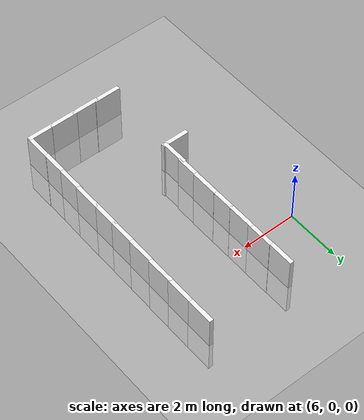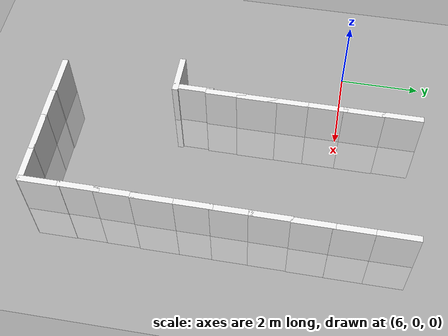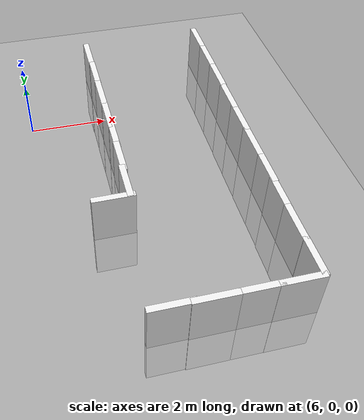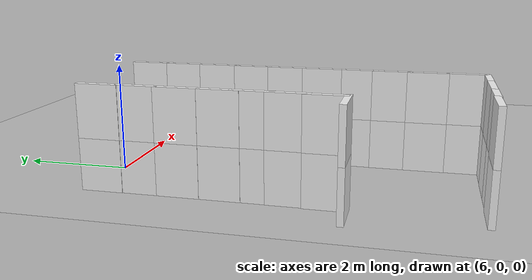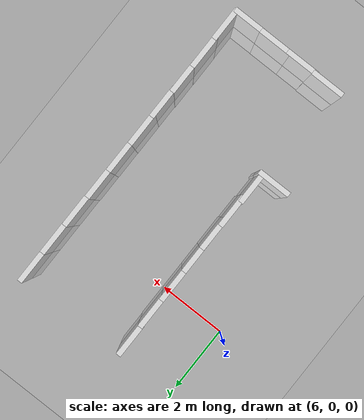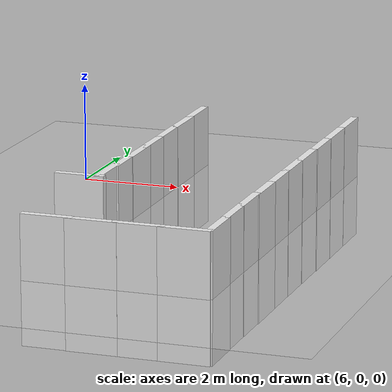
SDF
<sdf version="1.6">
 <world name="default">
  <model name="ground_plane">
   <static>1</static>
   <link name="link">
    <collision name="collision">
     <geometry><plane><normal>0 0 1</normal><size>100 100</size></plane></geometry>
     <surface><friction><ode><mu>100</mu><mu2>50</mu2></ode></friction></surface>
    </collision>
    <visual name="visual">
     <cast_shadows>0</cast_shadows>
     <geometry><plane><normal>0 0 1</normal><size>100 100</size></plane></geometry>
     <material>
      <script><uri>file://media/materials/scripts/gazebo.material</uri><name>Gazebo/Grey</name></script>
     </material>
    </visual>
   </link>
  </model>
  <model name="wall_right_13">
   <link name="Wall_10">
    <inertial>
     <mass>1</mass>
     <inertia><ixx>1</ixx><ixy>0</ixy><ixz>0</ixz><iyy>1</iyy><iyz>0</iyz><izz>1</izz></inertia>
    </inertial>
    <visual name="Wall_10_Visual_0">
     <geometry><box><size>1 0.15 2.5</size></box></geometry>
     <material>
      <script>
       <uri>model://wall/materials/scripts</uri>
       <uri>model://wall/materials/textures</uri>
       <name>wall_white</name>
      </script>
      <shader type="pixel"><normal_map>__default__</normal_map></shader>
      <ambient>1 1 1 1</ambient>
      <diffuse>1 1 1 1</diffuse>
      <specular>0 0 0 1</specular>
      <emissive>0 0 0 1</emissive>
     </material>
     <meta><layer>0</layer></meta>
    </visual>
    <collision name="Wall_10_Collision_0">
     <geometry><box><size>1 0.15 2.5</size></box></geometry>
     <surface>
      <friction>
       <ode><mu>1</mu><mu2>1</mu2><fdir1>0 0 0</fdir1><slip1>0</slip1><slip2>0</slip2></ode>
       <torsional>
        <coefficient>1</coefficient>
        <patch_radius>0</patch_radius>
        <surface_radius>0</surface_radius>
        <use_patch_radius>1</use_patch_radius>
        <ode><slip>0</slip></ode>
       </torsional>
      </friction>
      <bounce><restitution_coefficient>0</restitution_coefficient><threshold>1e+06</threshold></bounce>
      <contact>
       <collide_without_contact>0</collide_without_contact>
       <collide_without_contact_bitmask>1</collide_without_contact_bitmask>
       <collide_bitmask>1</collide_bitmask>
       <ode>
        <soft_cfm>0</soft_cfm>
        <soft_erp>0.2</soft_erp>
        <kp>1e+13</kp>
        <kd>1</kd>
        <max_vel>0.01</max_vel>
        <min_depth>0</min_depth>
       </ode>
       <bullet>
        <split_impulse>1</split_impulse>
        <split_impulse_penetration_threshold>-0.01</split_impulse_penetration_threshold>
        <soft_cfm>0</soft_cfm>
        <soft_erp>0.2</soft_erp>
        <kp>1e+13</kp>
        <kd>1</kd>
       </bullet>
      </contact>
     </surface>
    </collision>
   </link>
   <static>1</static>
   <pose>8 -7 0 0 -0 0</pose>
  </model>
  <model name="wall_right_13_clone_1">
   <link name="Wall_10">
    <inertial>
     <mass>1</mass>
     <inertia><ixx>1</ixx><ixy>0</ixy><ixz>0</ixz><iyy>1</iyy><iyz>0</iyz><izz>1</izz></inertia>
    </inertial>
    <visual name="Wall_10_Visual_0">
     <geometry><box><size>1 0.15 2.5</size></box></geometry>
     <material>
      <script>
       <uri>model://wall/materials/scripts</uri>
       <uri>model://wall/materials/textures</uri>
       <name>wall_white</name>
      </script>
      <shader type="pixel"><normal_map>__default__</normal_map></shader>
      <ambient>1 1 1 1</ambient>
      <diffuse>1 1 1 1</diffuse>
      <specular>0 0 0 1</specular>
      <emissive>0 0 0 1</emissive>
     </material>
     <meta><layer>0</layer></meta>
    </visual>
    <collision name="Wall_10_Collision_0">
     <geometry><box><size>1 0.15 2.5</size></box></geometry>
     <surface>
      <friction>
       <ode><mu>1</mu><mu2>1</mu2><fdir1>0 0 0</fdir1><slip1>0</slip1><slip2>0</slip2></ode>
       <torsional>
        <coefficient>1</coefficient>
        <patch_radius>0</patch_radius>
        <surface_radius>0</surface_radius>
        <use_patch_radius>1</use_patch_radius>
        <ode><slip>0</slip></ode>
       </torsional>
      </friction>
      <bounce><restitution_coefficient>0</restitution_coefficient><threshold>1e+06</threshold></bounce>
      <contact>
       <collide_without_contact>0</collide_without_contact>
       <collide_without_contact_bitmask>1</collide_without_contact_bitmask>
       <collide_bitmask>1</collide_bitmask>
       <ode>
        <soft_cfm>0</soft_cfm>
        <soft_erp>0.2</soft_erp>
        <kp>1e+13</kp>
        <kd>1</kd>
        <max_vel>0.01</max_vel>
        <min_depth>0</min_depth>
       </ode>
       <bullet>
        <split_impulse>1</split_impulse>
        <split_impulse_penetration_threshold>-0.01</split_impulse_penetration_threshold>
        <soft_cfm>0</soft_cfm>
        <soft_erp>0.2</soft_erp>
        <kp>1e+13</kp>
        <kd>1</kd>
       </bullet>
      </contact>
     </surface>
    </collision>
   </link>
   <static>1</static>
   <pose>8.86266 -7.0168 0 0 -0 0</pose>
  </model>
  <model name="wall_right_13_clone_2">
   <link name="Wall_10">
    <inertial>
     <mass>1</mass>
     <inertia><ixx>1</ixx><ixy>0</ixy><ixz>0</ixz><iyy>1</iyy><iyz>0</iyz><izz>1</izz></inertia>
    </inertial>
    <visual name="Wall_10_Visual_0">
     <geometry><box><size>1 0.15 2.5</size></box></geometry>
     <material>
      <script>
       <uri>model://wall/materials/scripts</uri>
       <uri>model://wall/materials/textures</uri>
       <name>wall_white</name>
      </script>
      <shader type="pixel"><normal_map>__default__</normal_map></shader>
      <ambient>1 1 1 1</ambient>
      <diffuse>1 1 1 1</diffuse>
      <specular>0 0 0 1</specular>
      <emissive>0 0 0 1</emissive>
     </material>
     <meta><layer>0</layer></meta>
    </visual>
    <collision name="Wall_10_Collision_0">
     <geometry><box><size>1 0.15 2.5</size></box></geometry>
     <surface>
      <friction>
       <ode><mu>1</mu><mu2>1</mu2><fdir1>0 0 0</fdir1><slip1>0</slip1><slip2>0</slip2></ode>
       <torsional>
        <coefficient>1</coefficient>
        <patch_radius>0</patch_radius>
        <surface_radius>0</surface_radius>
        <use_patch_radius>1</use_patch_radius>
        <ode><slip>0</slip></ode>
       </torsional>
      </friction>
      <bounce><restitution_coefficient>0</restitution_coefficient><threshold>1e+06</threshold></bounce>
      <contact>
       <collide_without_contact>0</collide_without_contact>
       <collide_without_contact_bitmask>1</collide_without_contact_bitmask>
       <collide_bitmask>1</collide_bitmask>
       <ode>
        <soft_cfm>0</soft_cfm>
        <soft_erp>0.2</soft_erp>
        <kp>1e+13</kp>
        <kd>1</kd>
        <max_vel>0.01</max_vel>
        <min_depth>0</min_depth>
       </ode>
       <bullet>
        <split_impulse>1</split_impulse>
        <split_impulse_penetration_threshold>-0.01</split_impulse_penetration_threshold>
        <soft_cfm>0</soft_cfm>
        <soft_erp>0.2</soft_erp>
        <kp>1e+13</kp>
        <kd>1</kd>
       </bullet>
      </contact>
     </surface>
    </collision>
   </link>
   <static>1</static>
   <pose>9.75403 -7.01601 0 0 -0 0</pose>
  </model>
  <model name="wall_right_13_clone_clone">
   <link name="Wall_10">
    <inertial>
     <mass>1</mass>
     <inertia><ixx>1</ixx><ixy>0</ixy><ixz>0</ixz><iyy>1</iyy><iyz>0</iyz><izz>1</izz></inertia>
    </inertial>
    <visual name="Wall_10_Visual_0">
     <geometry><box><size>1 0.15 2.5</size></box></geometry>
     <material>
      <script>
       <uri>model://wall/materials/scripts</uri>
       <uri>model://wall/materials/textures</uri>
       <name>wall_white</name>
      </script>
      <shader type="pixel"><normal_map>__default__</normal_map></shader>
      <ambient>1 1 1 1</ambient>
      <diffuse>1 1 1 1</diffuse>
      <specular>0 0 0 1</specular>
      <emissive>0 0 0 1</emissive>
     </material>
     <meta><layer>0</layer></meta>
    </visual>
    <collision name="Wall_10_Collision_0">
     <geometry><box><size>1 0.15 2.5</size></box></geometry>
     <surface>
      <friction>
       <ode><mu>1</mu><mu2>1</mu2><fdir1>0 0 0</fdir1><slip1>0</slip1><slip2>0</slip2></ode>
       <torsional>
        <coefficient>1</coefficient>
        <patch_radius>0</patch_radius>
        <surface_radius>0</surface_radius>
        <use_patch_radius>1</use_patch_radius>
        <ode><slip>0</slip></ode>
       </torsional>
      </friction>
      <bounce><restitution_coefficient>0</restitution_coefficient><threshold>1e+06</threshold></bounce>
      <contact>
       <collide_without_contact>0</collide_without_contact>
       <collide_without_contact_bitmask>1</collide_without_contact_bitmask>
       <collide_bitmask>1</collide_bitmask>
       <ode>
        <soft_cfm>0</soft_cfm>
        <soft_erp>0.2</soft_erp>
        <kp>1e+13</kp>
        <kd>1</kd>
        <max_vel>0.01</max_vel>
        <min_depth>0</min_depth>
       </ode>
       <bullet>
        <split_impulse>1</split_impulse>
        <split_impulse_penetration_threshold>-0.01</split_impulse_penetration_threshold>
        <soft_cfm>0</soft_cfm>
        <soft_erp>0.2</soft_erp>
        <kp>1e+13</kp>
        <kd>1</kd>
       </bullet>
      </contact>
     </surface>
    </collision>
   </link>
   <static>1</static>
   <pose>7.48174 -4.07036 0 0 -0 0</pose>
  </model>
  <model name="wall_left_12_clone">
   <link name="Wall_10">
    <inertial>
     <mass>1</mass>
     <inertia><ixx>1</ixx><ixy>0</ixy><ixz>0</ixz><iyy>1</iyy><iyz>0</iyz><izz>1</izz></inertia>
    </inertial>
    <visual name="Wall_10_Visual_0">
     <geometry><box><size>1 0.15 2.5</size></box></geometry>
     <material>
      <script>
       <uri>model://wall/materials/scripts</uri>
       <uri>model://wall/materials/textures</uri>
       <name>wall_white</name>
      </script>
      <shader type="pixel"><normal_map>__default__</normal_map></shader>
      <ambient>1 1 1 1</ambient>
      <diffuse>1 1 1 1</diffuse>
      <specular>0 0 0 1</specular>
      <emissive>0 0 0 1</emissive>
     </material>
     <meta><layer>0</layer></meta>
    </visual>
    <collision name="Wall_10_Collision_0">
     <geometry><box><size>1 0.15 2.5</size></box></geometry>
     <surface>
      <friction>
       <ode><mu>1</mu><mu2>1</mu2><fdir1>0 0 0</fdir1><slip1>0</slip1><slip2>0</slip2></ode>
       <torsional>
        <coefficient>1</coefficient>
        <patch_radius>0</patch_radius>
        <surface_radius>0</surface_radius>
        <use_patch_radius>1</use_patch_radius>
        <ode><slip>0</slip></ode>
       </torsional>
      </friction>
      <bounce><restitution_coefficient>0</restitution_coefficient><threshold>1e+06</threshold></bounce>
      <contact>
       <collide_without_contact>0</collide_without_contact>
       <collide_without_contact_bitmask>1</collide_without_contact_bitmask>
       <collide_bitmask>1</collide_bitmask>
       <ode>
        <soft_cfm>0</soft_cfm>
        <soft_erp>0.2</soft_erp>
        <kp>1e+13</kp>
        <kd>1</kd>
        <max_vel>0.01</max_vel>
        <min_depth>0</min_depth>
       </ode>
       <bullet>
        <split_impulse>1</split_impulse>
        <split_impulse_penetration_threshold>-0.01</split_impulse_penetration_threshold>
        <soft_cfm>0</soft_cfm>
        <soft_erp>0.2</soft_erp>
        <kp>1e+13</kp>
        <kd>1</kd>
       </bullet>
      </contact>
     </surface>
    </collision>
   </link>
   <static>1</static>
   <pose>7.86204 -3.62401 0 0 -0 1.57</pose>
  </model>
  <model name="wall_left_12_clone_0">
   <link name="Wall_10">
    <inertial>
     <mass>1</mass>
     <inertia><ixx>1</ixx><ixy>0</ixy><ixz>0</ixz><iyy>1</iyy><iyz>0</iyz><izz>1</izz></inertia>
    </inertial>
    <visual name="Wall_10_Visual_0">
     <geometry><box><size>1 0.15 2.5</size></box></geometry>
     <material>
      <script>
       <uri>model://wall/materials/scripts</uri>
       <uri>model://wall/materials/textures</uri>
       <name>wall_white</name>
      </script>
      <shader type="pixel"><normal_map>__default__</normal_map></shader>
      <ambient>1 1 1 1</ambient>
      <diffuse>1 1 1 1</diffuse>
      <specular>0 0 0 1</specular>
      <emissive>0 0 0 1</emissive>
     </material>
     <meta><layer>0</layer></meta>
    </visual>
    <collision name="Wall_10_Collision_0">
     <geometry><box><size>1 0.15 2.5</size></box></geometry>
     <surface>
      <friction>
       <ode><mu>1</mu><mu2>1</mu2><fdir1>0 0 0</fdir1><slip1>0</slip1><slip2>0</slip2></ode>
       <torsional>
        <coefficient>1</coefficient>
        <patch_radius>0</patch_radius>
        <surface_radius>0</surface_radius>
        <use_patch_radius>1</use_patch_radius>
        <ode><slip>0</slip></ode>
       </torsional>
      </friction>
      <bounce><restitution_coefficient>0</restitution_coefficient><threshold>1e+06</threshold></bounce>
      <contact>
       <collide_without_contact>0</collide_without_contact>
       <collide_without_contact_bitmask>1</collide_without_contact_bitmask>
       <collide_bitmask>1</collide_bitmask>
       <ode>
        <soft_cfm>0</soft_cfm>
        <soft_erp>0.2</soft_erp>
        <kp>1e+13</kp>
        <kd>1</kd>
        <max_vel>0.01</max_vel>
        <min_depth>0</min_depth>
       </ode>
       <bullet>
        <split_impulse>1</split_impulse>
        <split_impulse_penetration_threshold>-0.01</split_impulse_penetration_threshold>
        <soft_cfm>0</soft_cfm>
        <soft_erp>0.2</soft_erp>
        <kp>1e+13</kp>
        <kd>1</kd>
       </bullet>
      </contact>
     </surface>
    </collision>
   </link>
   <static>1</static>
   <pose>7.89497 -2.80901 0 0 -0 1.57</pose>
  </model>
  <model name="wall_left_12_clone_1">
   <link name="Wall_10">
    <inertial>
     <mass>1</mass>
     <inertia><ixx>1</ixx><ixy>0</ixy><ixz>0</ixz><iyy>1</iyy><iyz>0</iyz><izz>1</izz></inertia>
    </inertial>
    <visual name="Wall_10_Visual_0">
     <geometry><box><size>1 0.15 2.5</size></box></geometry>
     <material>
      <script>
       <uri>model://wall/materials/scripts</uri>
       <uri>model://wall/materials/textures</uri>
       <name>wall_white</name>
      </script>
      <shader type="pixel"><normal_map>__default__</normal_map></shader>
      <ambient>1 1 1 1</ambient>
      <diffuse>1 1 1 1</diffuse>
      <specular>0 0 0 1</specular>
      <emissive>0 0 0 1</emissive>
     </material>
     <meta><layer>0</layer></meta>
    </visual>
    <collision name="Wall_10_Collision_0">
     <geometry><box><size>1 0.15 2.5</size></box></geometry>
     <surface>
      <friction>
       <ode><mu>1</mu><mu2>1</mu2><fdir1>0 0 0</fdir1><slip1>0</slip1><slip2>0</slip2></ode>
       <torsional>
        <coefficient>1</coefficient>
        <patch_radius>0</patch_radius>
        <surface_radius>0</surface_radius>
        <use_patch_radius>1</use_patch_radius>
        <ode><slip>0</slip></ode>
       </torsional>
      </friction>
      <bounce><restitution_coefficient>0</restitution_coefficient><threshold>1e+06</threshold></bounce>
      <contact>
       <collide_without_contact>0</collide_without_contact>
       <collide_without_contact_bitmask>1</collide_without_contact_bitmask>
       <collide_bitmask>1</collide_bitmask>
       <ode>
        <soft_cfm>0</soft_cfm>
        <soft_erp>0.2</soft_erp>
        <kp>1e+13</kp>
        <kd>1</kd>
        <max_vel>0.01</max_vel>
        <min_depth>0</min_depth>
       </ode>
       <bullet>
        <split_impulse>1</split_impulse>
        <split_impulse_penetration_threshold>-0.01</split_impulse_penetration_threshold>
        <soft_cfm>0</soft_cfm>
        <soft_erp>0.2</soft_erp>
        <kp>1e+13</kp>
        <kd>1</kd>
       </bullet>
      </contact>
     </surface>
    </collision>
   </link>
   <static>1</static>
   <pose>7.90616 -2.03141 0 0 -0 1.57</pose>
  </model>
  <model name="wall_left_12_clone_2">
   <link name="Wall_10">
    <inertial>
     <mass>1</mass>
     <inertia><ixx>1</ixx><ixy>0</ixy><ixz>0</ixz><iyy>1</iyy><iyz>0</iyz><izz>1</izz></inertia>
    </inertial>
    <visual name="Wall_10_Visual_0">
     <geometry><box><size>1 0.15 2.5</size></box></geometry>
     <material>
      <script>
       <uri>model://wall/materials/scripts</uri>
       <uri>model://wall/materials/textures</uri>
       <name>wall_white</name>
      </script>
      <shader type="pixel"><normal_map>__default__</normal_map></shader>
      <ambient>1 1 1 1</ambient>
      <diffuse>1 1 1 1</diffuse>
      <specular>0 0 0 1</specular>
      <emissive>0 0 0 1</emissive>
     </material>
     <meta><layer>0</layer></meta>
    </visual>
    <collision name="Wall_10_Collision_0">
     <geometry><box><size>1 0.15 2.5</size></box></geometry>
     <surface>
      <friction>
       <ode><mu>1</mu><mu2>1</mu2><fdir1>0 0 0</fdir1><slip1>0</slip1><slip2>0</slip2></ode>
       <torsional>
        <coefficient>1</coefficient>
        <patch_radius>0</patch_radius>
        <surface_radius>0</surface_radius>
        <use_patch_radius>1</use_patch_radius>
        <ode><slip>0</slip></ode>
       </torsional>
      </friction>
      <bounce><restitution_coefficient>0</restitution_coefficient><threshold>1e+06</threshold></bounce>
      <contact>
       <collide_without_contact>0</collide_without_contact>
       <collide_without_contact_bitmask>1</collide_without_contact_bitmask>
       <collide_bitmask>1</collide_bitmask>
       <ode>
        <soft_cfm>0</soft_cfm>
        <soft_erp>0.2</soft_erp>
        <kp>1e+13</kp>
        <kd>1</kd>
        <max_vel>0.01</max_vel>
        <min_depth>0</min_depth>
       </ode>
       <bullet>
        <split_impulse>1</split_impulse>
        <split_impulse_penetration_threshold>-0.01</split_impulse_penetration_threshold>
        <soft_cfm>0</soft_cfm>
        <soft_erp>0.2</soft_erp>
        <kp>1e+13</kp>
        <kd>1</kd>
       </bullet>
      </contact>
     </surface>
    </collision>
   </link>
   <static>1</static>
   <pose>7.90357 -1.26367 0 0 -0 1.57</pose>
  </model>
  <model name="wall_left_12_clone_3">
   <link name="Wall_10">
    <inertial>
     <mass>1</mass>
     <inertia><ixx>1</ixx><ixy>0</ixy><ixz>0</ixz><iyy>1</iyy><iyz>0</iyz><izz>1</izz></inertia>
    </inertial>
    <visual name="Wall_10_Visual_0">
     <geometry><box><size>1 0.15 2.5</size></box></geometry>
     <material>
      <script>
       <uri>model://wall/materials/scripts</uri>
       <uri>model://wall/materials/textures</uri>
       <name>wall_white</name>
      </script>
      <shader type="pixel"><normal_map>__default__</normal_map></shader>
      <ambient>1 1 1 1</ambient>
      <diffuse>1 1 1 1</diffuse>
      <specular>0 0 0 1</specular>
      <emissive>0 0 0 1</emissive>
     </material>
     <meta><layer>0</layer></meta>
    </visual>
    <collision name="Wall_10_Collision_0">
     <geometry><box><size>1 0.15 2.5</size></box></geometry>
     <surface>
      <friction>
       <ode><mu>1</mu><mu2>1</mu2><fdir1>0 0 0</fdir1><slip1>0</slip1><slip2>0</slip2></ode>
       <torsional>
        <coefficient>1</coefficient>
        <patch_radius>0</patch_radius>
        <surface_radius>0</surface_radius>
        <use_patch_radius>1</use_patch_radius>
        <ode><slip>0</slip></ode>
       </torsional>
      </friction>
      <bounce><restitution_coefficient>0</restitution_coefficient><threshold>1e+06</threshold></bounce>
      <contact>
       <collide_without_contact>0</collide_without_contact>
       <collide_without_contact_bitmask>1</collide_without_contact_bitmask>
       <collide_bitmask>1</collide_bitmask>
       <ode>
        <soft_cfm>0</soft_cfm>
        <soft_erp>0.2</soft_erp>
        <kp>1e+13</kp>
        <kd>1</kd>
        <max_vel>0.01</max_vel>
        <min_depth>0</min_depth>
       </ode>
       <bullet>
        <split_impulse>1</split_impulse>
        <split_impulse_penetration_threshold>-0.01</split_impulse_penetration_threshold>
        <soft_cfm>0</soft_cfm>
        <soft_erp>0.2</soft_erp>
        <kp>1e+13</kp>
        <kd>1</kd>
       </bullet>
      </contact>
     </surface>
    </collision>
   </link>
   <static>1</static>
   <pose>7.90161 -0.305594 0 0 -0 1.57</pose>
  </model>
  <model name="wall_left_12_clone_4">
   <link name="Wall_10">
    <inertial>
     <mass>1</mass>
     <inertia><ixx>1</ixx><ixy>0</ixy><ixz>0</ixz><iyy>1</iyy><iyz>0</iyz><izz>1</izz></inertia>
    </inertial>
    <visual name="Wall_10_Visual_0">
     <geometry><box><size>1 0.15 2.5</size></box></geometry>
     <material>
      <script>
       <uri>model://wall/materials/scripts</uri>
       <uri>model://wall/materials/textures</uri>
       <name>wall_white</name>
      </script>
      <shader type="pixel"><normal_map>__default__</normal_map></shader>
      <ambient>1 1 1 1</ambient>
      <diffuse>1 1 1 1</diffuse>
      <specular>0 0 0 1</specular>
      <emissive>0 0 0 1</emissive>
     </material>
     <meta><layer>0</layer></meta>
    </visual>
    <collision name="Wall_10_Collision_0">
     <geometry><box><size>1 0.15 2.5</size></box></geometry>
     <surface>
      <friction>
       <ode><mu>1</mu><mu2>1</mu2><fdir1>0 0 0</fdir1><slip1>0</slip1><slip2>0</slip2></ode>
       <torsional>
        <coefficient>1</coefficient>
        <patch_radius>0</patch_radius>
        <surface_radius>0</surface_radius>
        <use_patch_radius>1</use_patch_radius>
        <ode><slip>0</slip></ode>
       </torsional>
      </friction>
      <bounce><restitution_coefficient>0</restitution_coefficient><threshold>1e+06</threshold></bounce>
      <contact>
       <collide_without_contact>0</collide_without_contact>
       <collide_without_contact_bitmask>1</collide_without_contact_bitmask>
       <collide_bitmask>1</collide_bitmask>
       <ode>
        <soft_cfm>0</soft_cfm>
        <soft_erp>0.2</soft_erp>
        <kp>1e+13</kp>
        <kd>1</kd>
        <max_vel>0.01</max_vel>
        <min_depth>0</min_depth>
       </ode>
       <bullet>
        <split_impulse>1</split_impulse>
        <split_impulse_penetration_threshold>-0.01</split_impulse_penetration_threshold>
        <soft_cfm>0</soft_cfm>
        <soft_erp>0.2</soft_erp>
        <kp>1e+13</kp>
        <kd>1</kd>
       </bullet>
      </contact>
     </surface>
    </collision>
   </link>
   <static>1</static>
   <pose>7.90639 0.592515 0 0 -0 1.57</pose>
  </model>
  <model name="wall_left_12_clone_5">
   <link name="Wall_10">
    <inertial>
     <mass>1</mass>
     <inertia><ixx>1</ixx><ixy>0</ixy><ixz>0</ixz><iyy>1</iyy><iyz>0</iyz><izz>1</izz></inertia>
    </inertial>
    <visual name="Wall_10_Visual_0">
     <geometry><box><size>1 0.15 2.5</size></box></geometry>
     <material>
      <script>
       <uri>model://wall/materials/scripts</uri>
       <uri>model://wall/materials/textures</uri>
       <name>wall_white</name>
      </script>
      <shader type="pixel"><normal_map>__default__</normal_map></shader>
      <ambient>1 1 1 1</ambient>
      <diffuse>1 1 1 1</diffuse>
      <specular>0 0 0 1</specular>
      <emissive>0 0 0 1</emissive>
     </material>
     <meta><layer>0</layer></meta>
    </visual>
    <collision name="Wall_10_Collision_0">
     <geometry><box><size>1 0.15 2.5</size></box></geometry>
     <surface>
      <friction>
       <ode><mu>1</mu><mu2>1</mu2><fdir1>0 0 0</fdir1><slip1>0</slip1><slip2>0</slip2></ode>
       <torsional>
        <coefficient>1</coefficient>
        <patch_radius>0</patch_radius>
        <surface_radius>0</surface_radius>
        <use_patch_radius>1</use_patch_radius>
        <ode><slip>0</slip></ode>
       </torsional>
      </friction>
      <bounce><restitution_coefficient>0</restitution_coefficient><threshold>1e+06</threshold></bounce>
      <contact>
       <collide_without_contact>0</collide_without_contact>
       <collide_without_contact_bitmask>1</collide_without_contact_bitmask>
       <collide_bitmask>1</collide_bitmask>
       <ode>
        <soft_cfm>0</soft_cfm>
        <soft_erp>0.2</soft_erp>
        <kp>1e+13</kp>
        <kd>1</kd>
        <max_vel>0.01</max_vel>
        <min_depth>0</min_depth>
       </ode>
       <bullet>
        <split_impulse>1</split_impulse>
        <split_impulse_penetration_threshold>-0.01</split_impulse_penetration_threshold>
        <soft_cfm>0</soft_cfm>
        <soft_erp>0.2</soft_erp>
        <kp>1e+13</kp>
        <kd>1</kd>
       </bullet>
      </contact>
     </surface>
    </collision>
   </link>
   <static>1</static>
   <pose>7.89587 1.52391 0 0 -0 1.57</pose>
  </model>
  <model name="wall_right_13_clone_2_clone">
   <link name="Wall_10">
    <inertial>
     <mass>1</mass>
     <inertia><ixx>1</ixx><ixy>0</ixy><ixz>0</ixz><iyy>1</iyy><iyz>0</iyz><izz>1</izz></inertia>
    </inertial>
    <visual name="Wall_10_Visual_0">
     <geometry><box><size>1 0.15 2.5</size></box></geometry>
     <material>
      <script>
       <uri>model://wall/materials/scripts</uri>
       <uri>model://wall/materials/textures</uri>
       <name>wall_white</name>
      </script>
      <shader type="pixel"><normal_map>__default__</normal_map></shader>
      <ambient>1 1 1 1</ambient>
      <diffuse>1 1 1 1</diffuse>
      <specular>0 0 0 1</specular>
      <emissive>0 0 0 1</emissive>
     </material>
     <meta><layer>0</layer></meta>
    </visual>
    <collision name="Wall_10_Collision_0">
     <geometry><box><size>1 0.15 2.5</size></box></geometry>
     <surface>
      <friction>
       <ode><mu>1</mu><mu2>1</mu2><fdir1>0 0 0</fdir1><slip1>0</slip1><slip2>0</slip2></ode>
       <torsional>
        <coefficient>1</coefficient>
        <patch_radius>0</patch_radius>
        <surface_radius>0</surface_radius>
        <use_patch_radius>1</use_patch_radius>
        <ode><slip>0</slip></ode>
       </torsional>
      </friction>
      <bounce><restitution_coefficient>0</restitution_coefficient><threshold>1e+06</threshold></bounce>
      <contact>
       <collide_without_contact>0</collide_without_contact>
       <collide_without_contact_bitmask>1</collide_without_contact_bitmask>
       <collide_bitmask>1</collide_bitmask>
       <ode>
        <soft_cfm>0</soft_cfm>
        <soft_erp>0.2</soft_erp>
        <kp>1e+13</kp>
        <kd>1</kd>
        <max_vel>0.01</max_vel>
        <min_depth>0</min_depth>
       </ode>
       <bullet>
        <split_impulse>1</split_impulse>
        <split_impulse_penetration_threshold>-0.01</split_impulse_penetration_threshold>
        <soft_cfm>0</soft_cfm>
        <soft_erp>0.2</soft_erp>
        <kp>1e+13</kp>
        <kd>1</kd>
       </bullet>
      </contact>
     </surface>
    </collision>
   </link>
   <static>1</static>
   <pose>10.6295 -7.02003 0 0 -0 0</pose>
  </model>
  <model name="wall_left_12_clone_clone">
   <link name="Wall_10">
    <inertial>
     <mass>1</mass>
     <inertia><ixx>1</ixx><ixy>0</ixy><ixz>0</ixz><iyy>1</iyy><iyz>0</iyz><izz>1</izz></inertia>
    </inertial>
    <visual name="Wall_10_Visual_0">
     <geometry><box><size>1 0.15 2.5</size></box></geometry>
     <material>
      <script>
       <uri>model://wall/materials/scripts</uri>
       <uri>model://wall/materials/textures</uri>
       <name>wall_white</name>
      </script>
      <shader type="pixel"><normal_map>__default__</normal_map></shader>
      <ambient>1 1 1 1</ambient>
      <diffuse>1 1 1 1</diffuse>
      <specular>0 0 0 1</specular>
      <emissive>0 0 0 1</emissive>
     </material>
     <meta><layer>0</layer></meta>
    </visual>
    <collision name="Wall_10_Collision_0">
     <geometry><box><size>1 0.15 2.5</size></box></geometry>
     <surface>
      <friction>
       <ode><mu>1</mu><mu2>1</mu2><fdir1>0 0 0</fdir1><slip1>0</slip1><slip2>0</slip2></ode>
       <torsional>
        <coefficient>1</coefficient>
        <patch_radius>0</patch_radius>
        <surface_radius>0</surface_radius>
        <use_patch_radius>1</use_patch_radius>
        <ode><slip>0</slip></ode>
       </torsional>
      </friction>
      <bounce><restitution_coefficient>0</restitution_coefficient><threshold>1e+06</threshold></bounce>
      <contact>
       <collide_without_contact>0</collide_without_contact>
       <collide_without_contact_bitmask>1</collide_without_contact_bitmask>
       <collide_bitmask>1</collide_bitmask>
       <ode>
        <soft_cfm>0</soft_cfm>
        <soft_erp>0.2</soft_erp>
        <kp>1e+13</kp>
        <kd>1</kd>
        <max_vel>0.01</max_vel>
        <min_depth>0</min_depth>
       </ode>
       <bullet>
        <split_impulse>1</split_impulse>
        <split_impulse_penetration_threshold>-0.01</split_impulse_penetration_threshold>
        <soft_cfm>0</soft_cfm>
        <soft_erp>0.2</soft_erp>
        <kp>1e+13</kp>
        <kd>1</kd>
       </bullet>
      </contact>
     </surface>
    </collision>
   </link>
   <static>1</static>
   <pose>11.0844 -6.56075 0 0 -0 1.57</pose>
  </model>
  <model name="wall_left_12_clone_clone_0">
   <link name="Wall_10">
    <inertial>
     <mass>1</mass>
     <inertia><ixx>1</ixx><ixy>0</ixy><ixz>0</ixz><iyy>1</iyy><iyz>0</iyz><izz>1</izz></inertia>
    </inertial>
    <visual name="Wall_10_Visual_0">
     <geometry><box><size>1 0.15 2.5</size></box></geometry>
     <material>
      <script>
       <uri>model://wall/materials/scripts</uri>
       <uri>model://wall/materials/textures</uri>
       <name>wall_white</name>
      </script>
      <shader type="pixel"><normal_map>__default__</normal_map></shader>
      <ambient>1 1 1 1</ambient>
      <diffuse>1 1 1 1</diffuse>
      <specular>0 0 0 1</specular>
      <emissive>0 0 0 1</emissive>
     </material>
     <meta><layer>0</layer></meta>
    </visual>
    <collision name="Wall_10_Collision_0">
     <geometry><box><size>1 0.15 2.5</size></box></geometry>
     <surface>
      <friction>
       <ode><mu>1</mu><mu2>1</mu2><fdir1>0 0 0</fdir1><slip1>0</slip1><slip2>0</slip2></ode>
       <torsional>
        <coefficient>1</coefficient>
        <patch_radius>0</patch_radius>
        <surface_radius>0</surface_radius>
        <use_patch_radius>1</use_patch_radius>
        <ode><slip>0</slip></ode>
       </torsional>
      </friction>
      <bounce><restitution_coefficient>0</restitution_coefficient><threshold>1e+06</threshold></bounce>
      <contact>
       <collide_without_contact>0</collide_without_contact>
       <collide_without_contact_bitmask>1</collide_without_contact_bitmask>
       <collide_bitmask>1</collide_bitmask>
       <ode>
        <soft_cfm>0</soft_cfm>
        <soft_erp>0.2</soft_erp>
        <kp>1e+13</kp>
        <kd>1</kd>
        <max_vel>0.01</max_vel>
        <min_depth>0</min_depth>
       </ode>
       <bullet>
        <split_impulse>1</split_impulse>
        <split_impulse_penetration_threshold>-0.01</split_impulse_penetration_threshold>
        <soft_cfm>0</soft_cfm>
        <soft_erp>0.2</soft_erp>
        <kp>1e+13</kp>
        <kd>1</kd>
       </bullet>
      </contact>
     </surface>
    </collision>
   </link>
   <static>1</static>
   <pose>11.0771 -5.63576 0 0 -0 1.57</pose>
  </model>
  <model name="wall_left_12_clone_clone_1">
   <link name="Wall_10">
    <inertial>
     <mass>1</mass>
     <inertia><ixx>1</ixx><ixy>0</ixy><ixz>0</ixz><iyy>1</iyy><iyz>0</iyz><izz>1</izz></inertia>
    </inertial>
    <visual name="Wall_10_Visual_0">
     <geometry><box><size>1 0.15 2.5</size></box></geometry>
     <material>
      <script>
       <uri>model://wall/materials/scripts</uri>
       <uri>model://wall/materials/textures</uri>
       <name>wall_white</name>
      </script>
      <shader type="pixel"><normal_map>__default__</normal_map></shader>
      <ambient>1 1 1 1</ambient>
      <diffuse>1 1 1 1</diffuse>
      <specular>0 0 0 1</specular>
      <emissive>0 0 0 1</emissive>
     </material>
     <meta><layer>0</layer></meta>
    </visual>
    <collision name="Wall_10_Collision_0">
     <geometry><box><size>1 0.15 2.5</size></box></geometry>
     <surface>
      <friction>
       <ode><mu>1</mu><mu2>1</mu2><fdir1>0 0 0</fdir1><slip1>0</slip1><slip2>0</slip2></ode>
       <torsional>
        <coefficient>1</coefficient>
        <patch_radius>0</patch_radius>
        <surface_radius>0</surface_radius>
        <use_patch_radius>1</use_patch_radius>
        <ode><slip>0</slip></ode>
       </torsional>
      </friction>
      <bounce><restitution_coefficient>0</restitution_coefficient><threshold>1e+06</threshold></bounce>
      <contact>
       <collide_without_contact>0</collide_without_contact>
       <collide_without_contact_bitmask>1</collide_without_contact_bitmask>
       <collide_bitmask>1</collide_bitmask>
       <ode>
        <soft_cfm>0</soft_cfm>
        <soft_erp>0.2</soft_erp>
        <kp>1e+13</kp>
        <kd>1</kd>
        <max_vel>0.01</max_vel>
        <min_depth>0</min_depth>
       </ode>
       <bullet>
        <split_impulse>1</split_impulse>
        <split_impulse_penetration_threshold>-0.01</split_impulse_penetration_threshold>
        <soft_cfm>0</soft_cfm>
        <soft_erp>0.2</soft_erp>
        <kp>1e+13</kp>
        <kd>1</kd>
       </bullet>
      </contact>
     </surface>
    </collision>
   </link>
   <static>1</static>
   <pose>11.0837 -4.78459 0 0 -0 1.57</pose>
  </model>
  <model name="wall_left_12_clone_clone_2">
   <link name="Wall_10">
    <inertial>
     <mass>1</mass>
     <inertia><ixx>1</ixx><ixy>0</ixy><ixz>0</ixz><iyy>1</iyy><iyz>0</iyz><izz>1</izz></inertia>
    </inertial>
    <visual name="Wall_10_Visual_0">
     <geometry><box><size>1 0.15 2.5</size></box></geometry>
     <material>
      <script>
       <uri>model://wall/materials/scripts</uri>
       <uri>model://wall/materials/textures</uri>
       <name>wall_white</name>
      </script>
      <shader type="pixel"><normal_map>__default__</normal_map></shader>
      <ambient>1 1 1 1</ambient>
      <diffuse>1 1 1 1</diffuse>
      <specular>0 0 0 1</specular>
      <emissive>0 0 0 1</emissive>
     </material>
     <meta><layer>0</layer></meta>
    </visual>
    <collision name="Wall_10_Collision_0">
     <geometry><box><size>1 0.15 2.5</size></box></geometry>
     <surface>
      <friction>
       <ode><mu>1</mu><mu2>1</mu2><fdir1>0 0 0</fdir1><slip1>0</slip1><slip2>0</slip2></ode>
       <torsional>
        <coefficient>1</coefficient>
        <patch_radius>0</patch_radius>
        <surface_radius>0</surface_radius>
        <use_patch_radius>1</use_patch_radius>
        <ode><slip>0</slip></ode>
       </torsional>
      </friction>
      <bounce><restitution_coefficient>0</restitution_coefficient><threshold>1e+06</threshold></bounce>
      <contact>
       <collide_without_contact>0</collide_without_contact>
       <collide_without_contact_bitmask>1</collide_without_contact_bitmask>
       <collide_bitmask>1</collide_bitmask>
       <ode>
        <soft_cfm>0</soft_cfm>
        <soft_erp>0.2</soft_erp>
        <kp>1e+13</kp>
        <kd>1</kd>
        <max_vel>0.01</max_vel>
        <min_depth>0</min_depth>
       </ode>
       <bullet>
        <split_impulse>1</split_impulse>
        <split_impulse_penetration_threshold>-0.01</split_impulse_penetration_threshold>
        <soft_cfm>0</soft_cfm>
        <soft_erp>0.2</soft_erp>
        <kp>1e+13</kp>
        <kd>1</kd>
       </bullet>
      </contact>
     </surface>
    </collision>
   </link>
   <static>1</static>
   <pose>11.0998 -3.93339 0 0 -0 1.57</pose>
  </model>
  <model name="wall_left_12_clone_clone_3">
   <link name="Wall_10">
    <inertial>
     <mass>1</mass>
     <inertia><ixx>1</ixx><ixy>0</ixy><ixz>0</ixz><iyy>1</iyy><iyz>0</iyz><izz>1</izz></inertia>
    </inertial>
    <visual name="Wall_10_Visual_0">
     <geometry><box><size>1 0.15 2.5</size></box></geometry>
     <material>
      <script>
       <uri>model://wall/materials/scripts</uri>
       <uri>model://wall/materials/textures</uri>
       <name>wall_white</name>
      </script>
      <shader type="pixel"><normal_map>__default__</normal_map></shader>
      <ambient>1 1 1 1</ambient>
      <diffuse>1 1 1 1</diffuse>
      <specular>0 0 0 1</specular>
      <emissive>0 0 0 1</emissive>
     </material>
     <meta><layer>0</layer></meta>
    </visual>
    <collision name="Wall_10_Collision_0">
     <geometry><box><size>1 0.15 2.5</size></box></geometry>
     <surface>
      <friction>
       <ode><mu>1</mu><mu2>1</mu2><fdir1>0 0 0</fdir1><slip1>0</slip1><slip2>0</slip2></ode>
       <torsional>
        <coefficient>1</coefficient>
        <patch_radius>0</patch_radius>
        <surface_radius>0</surface_radius>
        <use_patch_radius>1</use_patch_radius>
        <ode><slip>0</slip></ode>
       </torsional>
      </friction>
      <bounce><restitution_coefficient>0</restitution_coefficient><threshold>1e+06</threshold></bounce>
      <contact>
       <collide_without_contact>0</collide_without_contact>
       <collide_without_contact_bitmask>1</collide_without_contact_bitmask>
       <collide_bitmask>1</collide_bitmask>
       <ode>
        <soft_cfm>0</soft_cfm>
        <soft_erp>0.2</soft_erp>
        <kp>1e+13</kp>
        <kd>1</kd>
        <max_vel>0.01</max_vel>
        <min_depth>0</min_depth>
       </ode>
       <bullet>
        <split_impulse>1</split_impulse>
        <split_impulse_penetration_threshold>-0.01</split_impulse_penetration_threshold>
        <soft_cfm>0</soft_cfm>
        <soft_erp>0.2</soft_erp>
        <kp>1e+13</kp>
        <kd>1</kd>
       </bullet>
      </contact>
     </surface>
    </collision>
   </link>
   <static>1</static>
   <pose>11.1005 -3.02134 0 0 -0 1.57</pose>
  </model>
  <model name="wall_left_12_clone_clone_4">
   <link name="Wall_10">
    <inertial>
     <mass>1</mass>
     <inertia><ixx>1</ixx><ixy>0</ixy><ixz>0</ixz><iyy>1</iyy><iyz>0</iyz><izz>1</izz></inertia>
    </inertial>
    <visual name="Wall_10_Visual_0">
     <geometry><box><size>1 0.15 2.5</size></box></geometry>
     <material>
      <script>
       <uri>model://wall/materials/scripts</uri>
       <uri>model://wall/materials/textures</uri>
       <name>wall_white</name>
      </script>
      <shader type="pixel"><normal_map>__default__</normal_map></shader>
      <ambient>1 1 1 1</ambient>
      <diffuse>1 1 1 1</diffuse>
      <specular>0 0 0 1</specular>
      <emissive>0 0 0 1</emissive>
     </material>
     <meta><layer>0</layer></meta>
    </visual>
    <collision name="Wall_10_Collision_0">
     <geometry><box><size>1 0.15 2.5</size></box></geometry>
     <surface>
      <friction>
       <ode><mu>1</mu><mu2>1</mu2><fdir1>0 0 0</fdir1><slip1>0</slip1><slip2>0</slip2></ode>
       <torsional>
        <coefficient>1</coefficient>
        <patch_radius>0</patch_radius>
        <surface_radius>0</surface_radius>
        <use_patch_radius>1</use_patch_radius>
        <ode><slip>0</slip></ode>
       </torsional>
      </friction>
      <bounce><restitution_coefficient>0</restitution_coefficient><threshold>1e+06</threshold></bounce>
      <contact>
       <collide_without_contact>0</collide_without_contact>
       <collide_without_contact_bitmask>1</collide_without_contact_bitmask>
       <collide_bitmask>1</collide_bitmask>
       <ode>
        <soft_cfm>0</soft_cfm>
        <soft_erp>0.2</soft_erp>
        <kp>1e+13</kp>
        <kd>1</kd>
        <max_vel>0.01</max_vel>
        <min_depth>0</min_depth>
       </ode>
       <bullet>
        <split_impulse>1</split_impulse>
        <split_impulse_penetration_threshold>-0.01</split_impulse_penetration_threshold>
        <soft_cfm>0</soft_cfm>
        <soft_erp>0.2</soft_erp>
        <kp>1e+13</kp>
        <kd>1</kd>
       </bullet>
      </contact>
     </surface>
    </collision>
   </link>
   <static>1</static>
   <pose>11.1069 -2.11291 0 0 -0 1.57</pose>
  </model>
  <model name="wall_left_12_clone_clone_5">
   <link name="Wall_10">
    <inertial>
     <mass>1</mass>
     <inertia><ixx>1</ixx><ixy>0</ixy><ixz>0</ixz><iyy>1</iyy><iyz>0</iyz><izz>1</izz></inertia>
    </inertial>
    <visual name="Wall_10_Visual_0">
     <geometry><box><size>1 0.15 2.5</size></box></geometry>
     <material>
      <script>
       <uri>model://wall/materials/scripts</uri>
       <uri>model://wall/materials/textures</uri>
       <name>wall_white</name>
      </script>
      <shader type="pixel"><normal_map>__default__</normal_map></shader>
      <ambient>1 1 1 1</ambient>
      <diffuse>1 1 1 1</diffuse>
      <specular>0 0 0 1</specular>
      <emissive>0 0 0 1</emissive>
     </material>
     <meta><layer>0</layer></meta>
    </visual>
    <collision name="Wall_10_Collision_0">
     <geometry><box><size>1 0.15 2.5</size></box></geometry>
     <surface>
      <friction>
       <ode><mu>1</mu><mu2>1</mu2><fdir1>0 0 0</fdir1><slip1>0</slip1><slip2>0</slip2></ode>
       <torsional>
        <coefficient>1</coefficient>
        <patch_radius>0</patch_radius>
        <surface_radius>0</surface_radius>
        <use_patch_radius>1</use_patch_radius>
        <ode><slip>0</slip></ode>
       </torsional>
      </friction>
      <bounce><restitution_coefficient>0</restitution_coefficient><threshold>1e+06</threshold></bounce>
      <contact>
       <collide_without_contact>0</collide_without_contact>
       <collide_without_contact_bitmask>1</collide_without_contact_bitmask>
       <collide_bitmask>1</collide_bitmask>
       <ode>
        <soft_cfm>0</soft_cfm>
        <soft_erp>0.2</soft_erp>
        <kp>1e+13</kp>
        <kd>1</kd>
        <max_vel>0.01</max_vel>
        <min_depth>0</min_depth>
       </ode>
       <bullet>
        <split_impulse>1</split_impulse>
        <split_impulse_penetration_threshold>-0.01</split_impulse_penetration_threshold>
        <soft_cfm>0</soft_cfm>
        <soft_erp>0.2</soft_erp>
        <kp>1e+13</kp>
        <kd>1</kd>
       </bullet>
      </contact>
     </surface>
    </collision>
   </link>
   <static>1</static>
   <pose>11.1127 -1.22073 0 0 -0 1.57</pose>
  </model>
  <model name="wall_left_12_clone_clone_6">
   <link name="Wall_10">
    <inertial>
     <mass>1</mass>
     <inertia><ixx>1</ixx><ixy>0</ixy><ixz>0</ixz><iyy>1</iyy><iyz>0</iyz><izz>1</izz></inertia>
    </inertial>
    <visual name="Wall_10_Visual_0">
     <geometry><box><size>1 0.15 2.5</size></box></geometry>
     <material>
      <script>
       <uri>model://wall/materials/scripts</uri>
       <uri>model://wall/materials/textures</uri>
       <name>wall_white</name>
      </script>
      <shader type="pixel"><normal_map>__default__</normal_map></shader>
      <ambient>1 1 1 1</ambient>
      <diffuse>1 1 1 1</diffuse>
      <specular>0 0 0 1</specular>
      <emissive>0 0 0 1</emissive>
     </material>
     <meta><layer>0</layer></meta>
    </visual>
    <collision name="Wall_10_Collision_0">
     <geometry><box><size>1 0.15 2.5</size></box></geometry>
     <surface>
      <friction>
       <ode><mu>1</mu><mu2>1</mu2><fdir1>0 0 0</fdir1><slip1>0</slip1><slip2>0</slip2></ode>
       <torsional>
        <coefficient>1</coefficient>
        <patch_radius>0</patch_radius>
        <surface_radius>0</surface_radius>
        <use_patch_radius>1</use_patch_radius>
        <ode><slip>0</slip></ode>
       </torsional>
      </friction>
      <bounce><restitution_coefficient>0</restitution_coefficient><threshold>1e+06</threshold></bounce>
      <contact>
       <collide_without_contact>0</collide_without_contact>
       <collide_without_contact_bitmask>1</collide_without_contact_bitmask>
       <collide_bitmask>1</collide_bitmask>
       <ode>
        <soft_cfm>0</soft_cfm>
        <soft_erp>0.2</soft_erp>
        <kp>1e+13</kp>
        <kd>1</kd>
        <max_vel>0.01</max_vel>
        <min_depth>0</min_depth>
       </ode>
       <bullet>
        <split_impulse>1</split_impulse>
        <split_impulse_penetration_threshold>-0.01</split_impulse_penetration_threshold>
        <soft_cfm>0</soft_cfm>
        <soft_erp>0.2</soft_erp>
        <kp>1e+13</kp>
        <kd>1</kd>
       </bullet>
      </contact>
     </surface>
    </collision>
   </link>
   <static>1</static>
   <pose>11.1271 -0.269821 0 0 -0 1.57</pose>
  </model>
  <model name="wall_left_12_clone_clone_7">
   <link name="Wall_10">
    <inertial>
     <mass>1</mass>
     <inertia><ixx>1</ixx><ixy>0</ixy><ixz>0</ixz><iyy>1</iyy><iyz>0</iyz><izz>1</izz></inertia>
    </inertial>
    <visual name="Wall_10_Visual_0">
     <geometry><box><size>1 0.15 2.5</size></box></geometry>
     <material>
      <script>
       <uri>model://wall/materials/scripts</uri>
       <uri>model://wall/materials/textures</uri>
       <name>wall_white</name>
      </script>
      <shader type="pixel"><normal_map>__default__</normal_map></shader>
      <ambient>1 1 1 1</ambient>
      <diffuse>1 1 1 1</diffuse>
      <specular>0 0 0 1</specular>
      <emissive>0 0 0 1</emissive>
     </material>
     <meta><layer>0</layer></meta>
    </visual>
    <collision name="Wall_10_Collision_0">
     <geometry><box><size>1 0.15 2.5</size></box></geometry>
     <surface>
      <friction>
       <ode><mu>1</mu><mu2>1</mu2><fdir1>0 0 0</fdir1><slip1>0</slip1><slip2>0</slip2></ode>
       <torsional>
        <coefficient>1</coefficient>
        <patch_radius>0</patch_radius>
        <surface_radius>0</surface_radius>
        <use_patch_radius>1</use_patch_radius>
        <ode><slip>0</slip></ode>
       </torsional>
      </friction>
      <bounce><restitution_coefficient>0</restitution_coefficient><threshold>1e+06</threshold></bounce>
      <contact>
       <collide_without_contact>0</collide_without_contact>
       <collide_without_contact_bitmask>1</collide_without_contact_bitmask>
       <collide_bitmask>1</collide_bitmask>
       <ode>
        <soft_cfm>0</soft_cfm>
        <soft_erp>0.2</soft_erp>
        <kp>1e+13</kp>
        <kd>1</kd>
        <max_vel>0.01</max_vel>
        <min_depth>0</min_depth>
       </ode>
       <bullet>
        <split_impulse>1</split_impulse>
        <split_impulse_penetration_threshold>-0.01</split_impulse_penetration_threshold>
        <soft_cfm>0</soft_cfm>
        <soft_erp>0.2</soft_erp>
        <kp>1e+13</kp>
        <kd>1</kd>
       </bullet>
      </contact>
     </surface>
    </collision>
   </link>
   <static>1</static>
   <pose>11.1322 0.661376 0 0 -0 1.57</pose>
  </model>
  <model name="wall_left_12_clone_clone_8">
   <link name="Wall_10">
    <inertial>
     <mass>1</mass>
     <inertia><ixx>1</ixx><ixy>0</ixy><ixz>0</ixz><iyy>1</iyy><iyz>0</iyz><izz>1</izz></inertia>
    </inertial>
    <visual name="Wall_10_Visual_0">
     <geometry><box><size>1 0.15 2.5</size></box></geometry>
     <material>
      <script>
       <uri>model://wall/materials/scripts</uri>
       <uri>model://wall/materials/textures</uri>
       <name>wall_white</name>
      </script>
      <shader type="pixel"><normal_map>__default__</normal_map></shader>
      <ambient>1 1 1 1</ambient>
      <diffuse>1 1 1 1</diffuse>
      <specular>0 0 0 1</specular>
      <emissive>0 0 0 1</emissive>
     </material>
     <meta><layer>0</layer></meta>
    </visual>
    <collision name="Wall_10_Collision_0">
     <geometry><box><size>1 0.15 2.5</size></box></geometry>
     <surface>
      <friction>
       <ode><mu>1</mu><mu2>1</mu2><fdir1>0 0 0</fdir1><slip1>0</slip1><slip2>0</slip2></ode>
       <torsional>
        <coefficient>1</coefficient>
        <patch_radius>0</patch_radius>
        <surface_radius>0</surface_radius>
        <use_patch_radius>1</use_patch_radius>
        <ode><slip>0</slip></ode>
       </torsional>
      </friction>
      <bounce><restitution_coefficient>0</restitution_coefficient><threshold>1e+06</threshold></bounce>
      <contact>
       <collide_without_contact>0</collide_without_contact>
       <collide_without_contact_bitmask>1</collide_without_contact_bitmask>
       <collide_bitmask>1</collide_bitmask>
       <ode>
        <soft_cfm>0</soft_cfm>
        <soft_erp>0.2</soft_erp>
        <kp>1e+13</kp>
        <kd>1</kd>
        <max_vel>0.01</max_vel>
        <min_depth>0</min_depth>
       </ode>
       <bullet>
        <split_impulse>1</split_impulse>
        <split_impulse_penetration_threshold>-0.01</split_impulse_penetration_threshold>
        <soft_cfm>0</soft_cfm>
        <soft_erp>0.2</soft_erp>
        <kp>1e+13</kp>
        <kd>1</kd>
       </bullet>
      </contact>
     </surface>
    </collision>
   </link>
   <static>1</static>
   <pose>11.134 1.61528 0 0 -0 1.57</pose>
  </model>
 </world>
</sdf>
